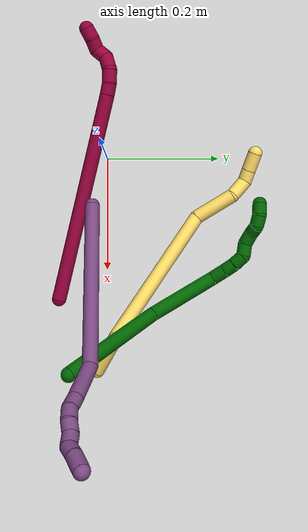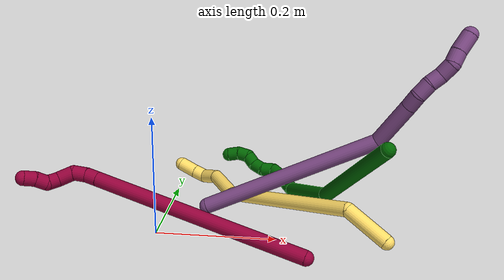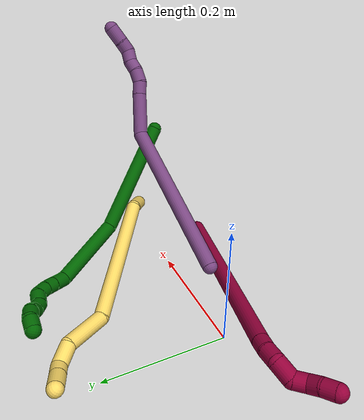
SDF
<sdf version="1.7">
 <world name="default">
  <model name="5">
   <static>0</static>
   <link name="5">
    <collision name="collision-cylinder-e_1_1_4">
     <pose>-0.037051 0.008114 -0.01436 -2.62729 -1.15197 2.37211</pose>
     <geometry><cylinder><radius>0.0125</radius><length>0.081112</length></cylinder></geometry>
     <surface>
      <friction><ode><mu>1.16</mu><mu2>1.16</mu2><slip1>0</slip1><slip2>0</slip2></ode></friction>
      <contact><ode><kp>1e+06</kp><kd>1</kd><max_vel>0</max_vel><min_depth>0.001</min_depth></ode></contact>
     </surface>
    </collision>
    <visual name="visual-cylinder-e_1_1_4">
     <pose>-0.037051 0.008114 -0.01436 -2.62729 -1.15197 2.37211</pose>
     <geometry><cylinder><radius>0.0125</radius><length>0.081112</length></cylinder></geometry>
     <material><ambient>1 0.858824 0.4 1</ambient></material>
    </visual>
    <collision name="collision-cylinder-e_2_4_5">
     <pose>-0.179542 0.083252 -0.006091 -1.24519 -0.97986 0.731219</pose>
     <geometry><cylinder><radius>0.0125</radius><length>0.253944</length></cylinder></geometry>
     <surface>
      <friction><ode><mu>1.16</mu><mu2>1.16</mu2><slip1>0</slip1><slip2>0</slip2></ode></friction>
      <contact><ode><kp>1e+06</kp><kd>1</kd><max_vel>0</max_vel><min_depth>0.001</min_depth></ode></contact>
     </surface>
    </collision>
    <visual name="visual-cylinder-e_2_4_5">
     <pose>-0.179542 0.083252 -0.006091 -1.24519 -0.97986 0.731219</pose>
     <geometry><cylinder><radius>0.0125</radius><length>0.253944</length></cylinder></geometry>
     <material><ambient>1 0.858824 0.4 1</ambient></material>
    </visual>
    <collision name="collision-cylinder-e_3_5_6">
     <pose>-0.321306 0.152115 0.025261 -0.207765 -1.33013 0.163167</pose>
     <geometry><cylinder><radius>0.0125</radius><length>0.074804</length></cylinder></geometry>
     <surface>
      <friction><ode><mu>1.16</mu><mu2>1.16</mu2><slip1>0</slip1><slip2>0</slip2></ode></friction>
      <contact><ode><kp>1e+06</kp><kd>1</kd><max_vel>0</max_vel><min_depth>0.001</min_depth></ode></contact>
     </surface>
    </collision>
    <visual name="visual-cylinder-e_3_5_6">
     <pose>-0.321306 0.152115 0.025261 -0.207765 -1.33013 0.163167</pose>
     <geometry><cylinder><radius>0.0125</radius><length>0.074804</length></cylinder></geometry>
     <material><ambient>1 0.858824 0.4 1</ambient></material>
    </visual>
    <collision name="collision-cylinder-e_4_6_7">
     <pose>-0.372246 0.162408 0.039593 -0.985015 -0.963998 0.547374</pose>
     <geometry><cylinder><radius>0.0125</radius><length>0.035584</length></cylinder></geometry>
     <surface>
      <friction><ode><mu>1.16</mu><mu2>1.16</mu2><slip1>0</slip1><slip2>0</slip2></ode></friction>
      <contact><ode><kp>1e+06</kp><kd>1</kd><max_vel>0</max_vel><min_depth>0.001</min_depth></ode></contact>
     </surface>
    </collision>
    <visual name="visual-cylinder-e_4_6_7">
     <pose>-0.372246 0.162408 0.039593 -0.985015 -0.963998 0.547374</pose>
     <geometry><cylinder><radius>0.0125</radius><length>0.035584</length></cylinder></geometry>
     <material><ambient>1 0.858824 0.4 1</ambient></material>
    </visual>
    <collision name="collision-cylinder-e_5_7_8">
     <pose>-0.396011 0.175736 0.041758 -2.18594 -0.992873 1.61577</pose>
     <geometry><cylinder><radius>0.0125</radius><length>0.021848</length></cylinder></geometry>
     <surface>
      <friction><ode><mu>1.16</mu><mu2>1.16</mu2><slip1>0</slip1><slip2>0</slip2></ode></friction>
      <contact><ode><kp>1e+06</kp><kd>1</kd><max_vel>0</max_vel><min_depth>0.001</min_depth></ode></contact>
     </surface>
    </collision>
    <visual name="visual-cylinder-e_5_7_8">
     <pose>-0.396011 0.175736 0.041758 -2.18594 -0.992873 1.61577</pose>
     <geometry><cylinder><radius>0.0125</radius><length>0.021848</length></cylinder></geometry>
     <material><ambient>1 0.858824 0.4 1</ambient></material>
    </visual>
    <collision name="collision-cylinder-e_6_8_2">
     <pose>-0.419051 0.18716 0.032693 -2.27999 -1.01472 1.75991</pose>
     <geometry><cylinder><radius>0.0125</radius><length>0.032708</length></cylinder></geometry>
     <surface>
      <friction><ode><mu>1.16</mu><mu2>1.16</mu2><slip1>0</slip1><slip2>0</slip2></ode></friction>
      <contact><ode><kp>1e+06</kp><kd>1</kd><max_vel>0</max_vel><min_depth>0.001</min_depth></ode></contact>
     </surface>
    </collision>
    <visual name="visual-cylinder-e_6_8_2">
     <pose>-0.419051 0.18716 0.032693 -2.27999 -1.01472 1.75991</pose>
     <geometry><cylinder><radius>0.0125</radius><length>0.032708</length></cylinder></geometry>
     <material><ambient>1 0.858824 0.4 1</ambient></material>
    </visual>
    <collision name="collision-sphere-2">
     <pose>-0.432941 0.193711 0.027071 0 -0 0</pose>
     <geometry><sphere><radius>0.0125</radius></sphere></geometry>
     <surface>
      <friction><ode><mu>1.16</mu><mu2>1.16</mu2><slip1>0</slip1><slip2>0</slip2></ode></friction>
      <contact><ode><kp>1e+06</kp><kd>1</kd><max_vel>0</max_vel><min_depth>0.001</min_depth></ode></contact>
     </surface>
    </collision>
    <visual name="visual-sphere-2">
     <pose>-0.432941 0.193711 0.027071 0 -0 0</pose>
     <geometry><sphere><radius>0.0125</radius></sphere></geometry>
     <material><ambient>1 0.858824 0.4 1</ambient></material>
    </visual>
    <collision name="collision-sphere-4">
     <pose>-0.074101 0.016227 -0.02872 0 -0 0</pose>
     <geometry><sphere><radius>0.0125</radius></sphere></geometry>
     <surface>
      <friction><ode><mu>1.16</mu><mu2>1.16</mu2><slip1>0</slip1><slip2>0</slip2></ode></friction>
      <contact><ode><kp>1e+06</kp><kd>1</kd><max_vel>0</max_vel><min_depth>0.001</min_depth></ode></contact>
     </surface>
    </collision>
    <visual name="visual-sphere-4">
     <pose>-0.074101 0.016227 -0.02872 0 -0 0</pose>
     <geometry><sphere><radius>0.0125</radius></sphere></geometry>
     <material><ambient>1 0.858824 0.4 1</ambient></material>
    </visual>
    <collision name="collision-sphere-1">
     <geometry><sphere><radius>0.0125</radius></sphere></geometry>
     <surface>
      <friction><ode><mu>1.16</mu><mu2>1.16</mu2><slip1>0</slip1><slip2>0</slip2></ode></friction>
      <contact><ode><kp>1e+06</kp><kd>1</kd><max_vel>0</max_vel><min_depth>0.001</min_depth></ode></contact>
     </surface>
    </collision>
    <visual name="visual-sphere-1">
     <geometry><sphere><radius>0.0125</radius></sphere></geometry>
     <material><ambient>1 0.858824 0.4 1</ambient></material>
    </visual>
    <collision name="collision-sphere-8">
     <pose>-0.405161 0.180609 0.038314 0 -0 0</pose>
     <geometry><sphere><radius>0.0125</radius></sphere></geometry>
     <surface>
      <friction><ode><mu>1.16</mu><mu2>1.16</mu2><slip1>0</slip1><slip2>0</slip2></ode></friction>
      <contact><ode><kp>1e+06</kp><kd>1</kd><max_vel>0</max_vel><min_depth>0.001</min_depth></ode></contact>
     </surface>
    </collision>
    <visual name="visual-sphere-8">
     <pose>-0.405161 0.180609 0.038314 0 -0 0</pose>
     <geometry><sphere><radius>0.0125</radius></sphere></geometry>
     <material><ambient>1 0.858824 0.4 1</ambient></material>
    </visual>
    <collision name="collision-sphere-5">
     <pose>-0.284982 0.150276 0.016538 0 -0 0</pose>
     <geometry><sphere><radius>0.0125</radius></sphere></geometry>
     <surface>
      <friction><ode><mu>1.16</mu><mu2>1.16</mu2><slip1>0</slip1><slip2>0</slip2></ode></friction>
      <contact><ode><kp>1e+06</kp><kd>1</kd><max_vel>0</max_vel><min_depth>0.001</min_depth></ode></contact>
     </surface>
    </collision>
    <visual name="visual-sphere-5">
     <pose>-0.284982 0.150276 0.016538 0 -0 0</pose>
     <geometry><sphere><radius>0.0125</radius></sphere></geometry>
     <material><ambient>1 0.858824 0.4 1</ambient></material>
    </visual>
    <collision name="collision-sphere-6">
     <pose>-0.35763 0.153954 0.033984 0 -0 0</pose>
     <geometry><sphere><radius>0.0125</radius></sphere></geometry>
     <surface>
      <friction><ode><mu>1.16</mu><mu2>1.16</mu2><slip1>0</slip1><slip2>0</slip2></ode></friction>
      <contact><ode><kp>1e+06</kp><kd>1</kd><max_vel>0</max_vel><min_depth>0.001</min_depth></ode></contact>
     </surface>
    </collision>
    <visual name="visual-sphere-6">
     <pose>-0.35763 0.153954 0.033984 0 -0 0</pose>
     <geometry><sphere><radius>0.0125</radius></sphere></geometry>
     <material><ambient>1 0.858824 0.4 1</ambient></material>
    </visual>
    <collision name="collision-sphere-7">
     <pose>-0.386862 0.170862 0.045202 0 -0 0</pose>
     <geometry><sphere><radius>0.0125</radius></sphere></geometry>
     <surface>
      <friction><ode><mu>1.16</mu><mu2>1.16</mu2><slip1>0</slip1><slip2>0</slip2></ode></friction>
      <contact><ode><kp>1e+06</kp><kd>1</kd><max_vel>0</max_vel><min_depth>0.001</min_depth></ode></contact>
     </surface>
    </collision>
    <visual name="visual-sphere-7">
     <pose>-0.386862 0.170862 0.045202 0 -0 0</pose>
     <geometry><sphere><radius>0.0125</radius></sphere></geometry>
     <material><ambient>1 0.858824 0.4 1</ambient></material>
    </visual>
    <inertial>
     <pose>-0.216476 0.097837 0.005137 0 -0 0</pose>
     <mass>0.5</mass>
     <inertia>
      <ixx>0.001064</ixx>
      <ixy>0</ixy>
      <ixz>0</ixz>
      <iyy>0.001687</iyy>
      <iyz>0</iyz>
      <izz>0.000491</izz>
     </inertia>
    </inertial>
   </link>
   <pose>0.377731 -0.016365 0.013686 -2.54491 0.32754 -0.942035</pose>
  </model>
  <model name="6">
   <static>0</static>
   <link name="6">
    <collision name="collision-cylinder-e_1_1_4">
     <pose>0.014207 0.012767 -0.098984 -3.01332 0.141397 -1.66836</pose>
     <geometry><cylinder><radius>0.0125</radius><length>0.201619</length></cylinder></geometry>
     <surface>
      <friction><ode><mu>1.16</mu><mu2>1.16</mu2><slip1>0</slip1><slip2>0</slip2></ode></friction>
      <contact><ode><kp>1e+06</kp><kd>1</kd><max_vel>0</max_vel><min_depth>0.001</min_depth></ode></contact>
     </surface>
    </collision>
    <visual name="visual-cylinder-e_1_1_4">
     <pose>0.014207 0.012767 -0.098984 -3.01332 0.141397 -1.66836</pose>
     <geometry><cylinder><radius>0.0125</radius><length>0.201619</length></cylinder></geometry>
     <material><ambient>0 0.392157 0.003922 1</ambient></material>
    </visual>
    <collision name="collision-cylinder-e_2_4_5">
     <pose>0.039665 0.058309 -0.251472 -2.59198 0.177434 -0.611223</pose>
     <geometry><cylinder><radius>0.0125</radius><length>0.127493</length></cylinder></geometry>
     <surface>
      <friction><ode><mu>1.16</mu><mu2>1.16</mu2><slip1>0</slip1><slip2>0</slip2></ode></friction>
      <contact><ode><kp>1e+06</kp><kd>1</kd><max_vel>0</max_vel><min_depth>0.001</min_depth></ode></contact>
     </surface>
    </collision>
    <visual name="visual-cylinder-e_2_4_5">
     <pose>0.039665 0.058309 -0.251472 -2.59198 0.177434 -0.611223</pose>
     <geometry><cylinder><radius>0.0125</radius><length>0.127493</length></cylinder></geometry>
     <material><ambient>0 0.392157 0.003922 1</ambient></material>
    </visual>
    <collision name="collision-cylinder-e_3_5_6">
     <pose>0.051952 0.102854 -0.31136 -2.06773 0.077223 -0.129612</pose>
     <geometry><cylinder><radius>0.0125</radius><length>0.026857</length></cylinder></geometry>
     <surface>
      <friction><ode><mu>1.16</mu><mu2>1.16</mu2><slip1>0</slip1><slip2>0</slip2></ode></friction>
      <contact><ode><kp>1e+06</kp><kd>1</kd><max_vel>0</max_vel><min_depth>0.001</min_depth></ode></contact>
     </surface>
    </collision>
    <visual name="visual-cylinder-e_3_5_6">
     <pose>0.051952 0.102854 -0.31136 -2.06773 0.077223 -0.129612</pose>
     <geometry><cylinder><radius>0.0125</radius><length>0.026857</length></cylinder></geometry>
     <material><ambient>0 0.392157 0.003922 1</ambient></material>
    </visual>
    <collision name="collision-cylinder-e_4_6_7">
     <pose>0.053493 0.123465 -0.322396 -2.0552 0.050432 -0.083495</pose>
     <geometry><cylinder><radius>0.0125</radius><length>0.02001</length></cylinder></geometry>
     <surface>
      <friction><ode><mu>1.16</mu><mu2>1.16</mu2><slip1>0</slip1><slip2>0</slip2></ode></friction>
      <contact><ode><kp>1e+06</kp><kd>1</kd><max_vel>0</max_vel><min_depth>0.001</min_depth></ode></contact>
     </surface>
    </collision>
    <visual name="visual-cylinder-e_4_6_7">
     <pose>0.053493 0.123465 -0.322396 -2.0552 0.050432 -0.083495</pose>
     <geometry><cylinder><radius>0.0125</radius><length>0.02001</length></cylinder></geometry>
     <material><ambient>0 0.392157 0.003922 1</ambient></material>
    </visual>
    <collision name="collision-cylinder-e_5_7_8">
     <pose>0.053013 0.14149 -0.332609 -2.11525 -0.091402 0.161953</pose>
     <geometry><cylinder><radius>0.0125</radius><length>0.021558</length></cylinder></geometry>
     <surface>
      <friction><ode><mu>1.16</mu><mu2>1.16</mu2><slip1>0</slip1><slip2>0</slip2></ode></friction>
      <contact><ode><kp>1e+06</kp><kd>1</kd><max_vel>0</max_vel><min_depth>0.001</min_depth></ode></contact>
     </surface>
    </collision>
    <visual name="visual-cylinder-e_5_7_8">
     <pose>0.053013 0.14149 -0.332609 -2.11525 -0.091402 0.161953</pose>
     <geometry><cylinder><radius>0.0125</radius><length>0.021558</length></cylinder></geometry>
     <material><ambient>0 0.392157 0.003922 1</ambient></material>
    </visual>
    <collision name="collision-cylinder-e_6_8_9">
     <pose>0.044733 0.15571 -0.344624 -2.479 -0.727847 1.67256</pose>
     <geometry><cylinder><radius>0.0125</radius><length>0.021935</length></cylinder></geometry>
     <surface>
      <friction><ode><mu>1.16</mu><mu2>1.16</mu2><slip1>0</slip1><slip2>0</slip2></ode></friction>
      <contact><ode><kp>1e+06</kp><kd>1</kd><max_vel>0</max_vel><min_depth>0.001</min_depth></ode></contact>
     </surface>
    </collision>
    <visual name="visual-cylinder-e_6_8_9">
     <pose>0.044733 0.15571 -0.344624 -2.479 -0.727847 1.67256</pose>
     <geometry><cylinder><radius>0.0125</radius><length>0.021935</length></cylinder></geometry>
     <material><ambient>0 0.392157 0.003922 1</ambient></material>
    </visual>
    <collision name="collision-cylinder-e_7_9_10">
     <pose>0.033499 0.169047 -0.355544 -2.06424 -0.395786 0.647434</pose>
     <geometry><cylinder><radius>0.0125</radius><length>0.020428</length></cylinder></geometry>
     <surface>
      <friction><ode><mu>1.16</mu><mu2>1.16</mu2><slip1>0</slip1><slip2>0</slip2></ode></friction>
      <contact><ode><kp>1e+06</kp><kd>1</kd><max_vel>0</max_vel><min_depth>0.001</min_depth></ode></contact>
     </surface>
    </collision>
    <visual name="visual-cylinder-e_7_9_10">
     <pose>0.033499 0.169047 -0.355544 -2.06424 -0.395786 0.647434</pose>
     <geometry><cylinder><radius>0.0125</radius><length>0.020428</length></cylinder></geometry>
     <material><ambient>0 0.392157 0.003922 1</ambient></material>
    </visual>
    <collision name="collision-cylinder-e_8_10_11">
     <pose>0.026524 0.18691 -0.360472 -1.61922 -0.307225 0.322216</pose>
     <geometry><cylinder><radius>0.0125</radius><length>0.020088</length></cylinder></geometry>
     <surface>
      <friction><ode><mu>1.16</mu><mu2>1.16</mu2><slip1>0</slip1><slip2>0</slip2></ode></friction>
      <contact><ode><kp>1e+06</kp><kd>1</kd><max_vel>0</max_vel><min_depth>0.001</min_depth></ode></contact>
     </surface>
    </collision>
    <visual name="visual-cylinder-e_8_10_11">
     <pose>0.026524 0.18691 -0.360472 -1.61922 -0.307225 0.322216</pose>
     <geometry><cylinder><radius>0.0125</radius><length>0.020088</length></cylinder></geometry>
     <material><ambient>0 0.392157 0.003922 1</ambient></material>
    </visual>
    <collision name="collision-cylinder-e_9_11_12">
     <pose>0.017409 0.20284 -0.365687 -2.21188 -0.65294 1.18768</pose>
     <geometry><cylinder><radius>0.0125</radius><length>0.020006</length></cylinder></geometry>
     <surface>
      <friction><ode><mu>1.16</mu><mu2>1.16</mu2><slip1>0</slip1><slip2>0</slip2></ode></friction>
      <contact><ode><kp>1e+06</kp><kd>1</kd><max_vel>0</max_vel><min_depth>0.001</min_depth></ode></contact>
     </surface>
    </collision>
    <visual name="visual-cylinder-e_9_11_12">
     <pose>0.017409 0.20284 -0.365687 -2.21188 -0.65294 1.18768</pose>
     <geometry><cylinder><radius>0.0125</radius><length>0.020006</length></cylinder></geometry>
     <material><ambient>0 0.392157 0.003922 1</ambient></material>
    </visual>
    <collision name="collision-cylinder-e_10_12_2">
     <pose>0.004325 0.211954 -0.377028 -2.74673 -0.77605 2.23134</pose>
     <geometry><cylinder><radius>0.0125</radius><length>0.020005</length></cylinder></geometry>
     <surface>
      <friction><ode><mu>1.16</mu><mu2>1.16</mu2><slip1>0</slip1><slip2>0</slip2></ode></friction>
      <contact><ode><kp>1e+06</kp><kd>1</kd><max_vel>0</max_vel><min_depth>0.001</min_depth></ode></contact>
     </surface>
    </collision>
    <visual name="visual-cylinder-e_10_12_2">
     <pose>0.004325 0.211954 -0.377028 -2.74673 -0.77605 2.23134</pose>
     <geometry><cylinder><radius>0.0125</radius><length>0.020005</length></cylinder></geometry>
     <material><ambient>0 0.392157 0.003922 1</ambient></material>
    </visual>
    <collision name="collision-sphere-2">
     <pose>-0.002681 0.2147 -0.383618 0 -0 0</pose>
     <geometry><sphere><radius>0.0125</radius></sphere></geometry>
     <surface>
      <friction><ode><mu>1.16</mu><mu2>1.16</mu2><slip1>0</slip1><slip2>0</slip2></ode></friction>
      <contact><ode><kp>1e+06</kp><kd>1</kd><max_vel>0</max_vel><min_depth>0.001</min_depth></ode></contact>
     </surface>
    </collision>
    <visual name="visual-sphere-2">
     <pose>-0.002681 0.2147 -0.383618 0 -0 0</pose>
     <geometry><sphere><radius>0.0125</radius></sphere></geometry>
     <material><ambient>0 0.392157 0.003922 1</ambient></material>
    </visual>
    <collision name="collision-sphere-12">
     <pose>0.011332 0.209208 -0.370439 0 -0 0</pose>
     <geometry><sphere><radius>0.0125</radius></sphere></geometry>
     <surface>
      <friction><ode><mu>1.16</mu><mu2>1.16</mu2><slip1>0</slip1><slip2>0</slip2></ode></friction>
      <contact><ode><kp>1e+06</kp><kd>1</kd><max_vel>0</max_vel><min_depth>0.001</min_depth></ode></contact>
     </surface>
    </collision>
    <visual name="visual-sphere-12">
     <pose>0.011332 0.209208 -0.370439 0 -0 0</pose>
     <geometry><sphere><radius>0.0125</radius></sphere></geometry>
     <material><ambient>0 0.392157 0.003922 1</ambient></material>
    </visual>
    <collision name="collision-sphere-11">
     <pose>0.023486 0.196472 -0.360935 0 -0 0</pose>
     <geometry><sphere><radius>0.0125</radius></sphere></geometry>
     <surface>
      <friction><ode><mu>1.16</mu><mu2>1.16</mu2><slip1>0</slip1><slip2>0</slip2></ode></friction>
      <contact><ode><kp>1e+06</kp><kd>1</kd><max_vel>0</max_vel><min_depth>0.001</min_depth></ode></contact>
     </surface>
    </collision>
    <visual name="visual-sphere-11">
     <pose>0.023486 0.196472 -0.360935 0 -0 0</pose>
     <geometry><sphere><radius>0.0125</radius></sphere></geometry>
     <material><ambient>0 0.392157 0.003922 1</ambient></material>
    </visual>
    <collision name="collision-sphere-10">
     <pose>0.029561 0.177347 -0.360008 0 -0 0</pose>
     <geometry><sphere><radius>0.0125</radius></sphere></geometry>
     <surface>
      <friction><ode><mu>1.16</mu><mu2>1.16</mu2><slip1>0</slip1><slip2>0</slip2></ode></friction>
      <contact><ode><kp>1e+06</kp><kd>1</kd><max_vel>0</max_vel><min_depth>0.001</min_depth></ode></contact>
     </surface>
    </collision>
    <visual name="visual-sphere-10">
     <pose>0.029561 0.177347 -0.360008 0 -0 0</pose>
     <geometry><sphere><radius>0.0125</radius></sphere></geometry>
     <material><ambient>0 0.392157 0.003922 1</ambient></material>
    </visual>
    <collision name="collision-sphere-9">
     <pose>0.037437 0.160747 -0.35108 0 -0 0</pose>
     <geometry><sphere><radius>0.0125</radius></sphere></geometry>
     <surface>
      <friction><ode><mu>1.16</mu><mu2>1.16</mu2><slip1>0</slip1><slip2>0</slip2></ode></friction>
      <contact><ode><kp>1e+06</kp><kd>1</kd><max_vel>0</max_vel><min_depth>0.001</min_depth></ode></contact>
     </surface>
    </collision>
    <visual name="visual-sphere-9">
     <pose>0.037437 0.160747 -0.35108 0 -0 0</pose>
     <geometry><sphere><radius>0.0125</radius></sphere></geometry>
     <material><ambient>0 0.392157 0.003922 1</ambient></material>
    </visual>
    <collision name="collision-sphere-4">
     <pose>0.028413 0.025534 -0.197967 0 -0 0</pose>
     <geometry><sphere><radius>0.0125</radius></sphere></geometry>
     <surface>
      <friction><ode><mu>1.16</mu><mu2>1.16</mu2><slip1>0</slip1><slip2>0</slip2></ode></friction>
      <contact><ode><kp>1e+06</kp><kd>1</kd><max_vel>0</max_vel><min_depth>0.001</min_depth></ode></contact>
     </surface>
    </collision>
    <visual name="visual-sphere-4">
     <pose>0.028413 0.025534 -0.197967 0 -0 0</pose>
     <geometry><sphere><radius>0.0125</radius></sphere></geometry>
     <material><ambient>0 0.392157 0.003922 1</ambient></material>
    </visual>
    <collision name="collision-sphere-1">
     <geometry><sphere><radius>0.0125</radius></sphere></geometry>
     <surface>
      <friction><ode><mu>1.16</mu><mu2>1.16</mu2><slip1>0</slip1><slip2>0</slip2></ode></friction>
      <contact><ode><kp>1e+06</kp><kd>1</kd><max_vel>0</max_vel><min_depth>0.001</min_depth></ode></contact>
     </surface>
    </collision>
    <visual name="visual-sphere-1">
     <geometry><sphere><radius>0.0125</radius></sphere></geometry>
     <material><ambient>0 0.392157 0.003922 1</ambient></material>
    </visual>
    <collision name="collision-sphere-8">
     <pose>0.052029 0.150672 -0.338169 0 -0 0</pose>
     <geometry><sphere><radius>0.0125</radius></sphere></geometry>
     <surface>
      <friction><ode><mu>1.16</mu><mu2>1.16</mu2><slip1>0</slip1><slip2>0</slip2></ode></friction>
      <contact><ode><kp>1e+06</kp><kd>1</kd><max_vel>0</max_vel><min_depth>0.001</min_depth></ode></contact>
     </surface>
    </collision>
    <visual name="visual-sphere-8">
     <pose>0.052029 0.150672 -0.338169 0 -0 0</pose>
     <geometry><sphere><radius>0.0125</radius></sphere></geometry>
     <material><ambient>0 0.392157 0.003922 1</ambient></material>
    </visual>
    <collision name="collision-sphere-5">
     <pose>0.050917 0.091085 -0.304977 0 -0 0</pose>
     <geometry><sphere><radius>0.0125</radius></sphere></geometry>
     <surface>
      <friction><ode><mu>1.16</mu><mu2>1.16</mu2><slip1>0</slip1><slip2>0</slip2></ode></friction>
      <contact><ode><kp>1e+06</kp><kd>1</kd><max_vel>0</max_vel><min_depth>0.001</min_depth></ode></contact>
     </surface>
    </collision>
    <visual name="visual-sphere-5">
     <pose>0.050917 0.091085 -0.304977 0 -0 0</pose>
     <geometry><sphere><radius>0.0125</radius></sphere></geometry>
     <material><ambient>0 0.392157 0.003922 1</ambient></material>
    </visual>
    <collision name="collision-sphere-6">
     <pose>0.052988 0.114623 -0.317743 0 -0 0</pose>
     <geometry><sphere><radius>0.0125</radius></sphere></geometry>
     <surface>
      <friction><ode><mu>1.16</mu><mu2>1.16</mu2><slip1>0</slip1><slip2>0</slip2></ode></friction>
      <contact><ode><kp>1e+06</kp><kd>1</kd><max_vel>0</max_vel><min_depth>0.001</min_depth></ode></contact>
     </surface>
    </collision>
    <visual name="visual-sphere-6">
     <pose>0.052988 0.114623 -0.317743 0 -0 0</pose>
     <geometry><sphere><radius>0.0125</radius></sphere></geometry>
     <material><ambient>0 0.392157 0.003922 1</ambient></material>
    </visual>
    <collision name="collision-sphere-7">
     <pose>0.053997 0.132308 -0.327049 0 -0 0</pose>
     <geometry><sphere><radius>0.0125</radius></sphere></geometry>
     <surface>
      <friction><ode><mu>1.16</mu><mu2>1.16</mu2><slip1>0</slip1><slip2>0</slip2></ode></friction>
      <contact><ode><kp>1e+06</kp><kd>1</kd><max_vel>0</max_vel><min_depth>0.001</min_depth></ode></contact>
     </surface>
    </collision>
    <visual name="visual-sphere-7">
     <pose>0.053997 0.132308 -0.327049 0 -0 0</pose>
     <geometry><sphere><radius>0.0125</radius></sphere></geometry>
     <material><ambient>0 0.392157 0.003922 1</ambient></material>
    </visual>
    <inertial>
     <pose>0.028326 0.074426 -0.221848 0 -0 0</pose>
     <mass>0.5</mass>
     <inertia>
      <ixx>-0.000693</ixx>
      <ixy>0</ixy>
      <ixz>0</ixz>
      <iyy>-0.000796</iyy>
      <iyz>0</iyz>
      <izz>-0.000343</izz>
     </inertia>
    </inertial>
   </link>
   <pose>0.366614 -0.048152 0.177878 0.765214 0.129088 0.677006</pose>
  </model>
  <model name="8">
   <static>0</static>
   <link name="8">
    <collision name="collision-cylinder-e_1_1_4">
     <pose>-0.138444 0.062929 0.103771 -0.545127 -0.851059 0.252026</pose>
     <geometry><cylinder><radius>0.0125</radius><length>0.368212</length></cylinder></geometry>
     <surface>
      <friction><ode><mu>1.16</mu><mu2>1.16</mu2><slip1>0</slip1><slip2>0</slip2></ode></friction>
      <contact><ode><kp>1e+06</kp><kd>1</kd><max_vel>0</max_vel><min_depth>0.001</min_depth></ode></contact>
     </surface>
    </collision>
    <visual name="visual-cylinder-e_1_1_4">
     <pose>-0.138444 0.062929 0.103771 -0.545127 -0.851059 0.252026</pose>
     <geometry><cylinder><radius>0.0125</radius><length>0.368212</length></cylinder></geometry>
     <material><ambient>0.584314 0 0.227451 1</ambient></material>
    </visual>
    <collision name="collision-cylinder-e_2_4_5">
     <pose>-0.284914 0.129147 0.212984 -0.54359 -0.900725 0.267882</pose>
     <geometry><cylinder><radius>0.0125</radius><length>0.020481</length></cylinder></geometry>
     <surface>
      <friction><ode><mu>1.16</mu><mu2>1.16</mu2><slip1>0</slip1><slip2>0</slip2></ode></friction>
      <contact><ode><kp>1e+06</kp><kd>1</kd><max_vel>0</max_vel><min_depth>0.001</min_depth></ode></contact>
     </surface>
    </collision>
    <visual name="visual-cylinder-e_2_4_5">
     <pose>-0.284914 0.129147 0.212984 -0.54359 -0.900725 0.267882</pose>
     <geometry><cylinder><radius>0.0125</radius><length>0.020481</length></cylinder></geometry>
     <material><ambient>0.584314 0 0.227451 1</ambient></material>
    </visual>
    <collision name="collision-cylinder-e_3_5_6">
     <pose>-0.302265 0.137196 0.222355 -0.880964 -0.986159 0.496147</pose>
     <geometry><cylinder><radius>0.0125</radius><length>0.022365</length></cylinder></geometry>
     <surface>
      <friction><ode><mu>1.16</mu><mu2>1.16</mu2><slip1>0</slip1><slip2>0</slip2></ode></friction>
      <contact><ode><kp>1e+06</kp><kd>1</kd><max_vel>0</max_vel><min_depth>0.001</min_depth></ode></contact>
     </surface>
    </collision>
    <visual name="visual-cylinder-e_3_5_6">
     <pose>-0.302265 0.137196 0.222355 -0.880964 -0.986159 0.496147</pose>
     <geometry><cylinder><radius>0.0125</radius><length>0.022365</length></cylinder></geometry>
     <material><ambient>0.584314 0 0.227451 1</ambient></material>
    </visual>
    <collision name="collision-cylinder-e_4_6_7">
     <pose>-0.320651 0.152666 0.225386 -1.65433 -0.700448 0.756084</pose>
     <geometry><cylinder><radius>0.0125</radius><length>0.028113</length></cylinder></geometry>
     <surface>
      <friction><ode><mu>1.16</mu><mu2>1.16</mu2><slip1>0</slip1><slip2>0</slip2></ode></friction>
      <contact><ode><kp>1e+06</kp><kd>1</kd><max_vel>0</max_vel><min_depth>0.001</min_depth></ode></contact>
     </surface>
    </collision>
    <visual name="visual-cylinder-e_4_6_7">
     <pose>-0.320651 0.152666 0.225386 -1.65433 -0.700448 0.756084</pose>
     <geometry><cylinder><radius>0.0125</radius><length>0.028113</length></cylinder></geometry>
     <material><ambient>0.584314 0 0.227451 1</ambient></material>
    </visual>
    <collision name="collision-cylinder-e_5_7_8">
     <pose>-0.337931 0.166551 0.219027 -2.61502 -0.915467 2.14028</pose>
     <geometry><cylinder><radius>0.0125</radius><length>0.020737</length></cylinder></geometry>
     <surface>
      <friction><ode><mu>1.16</mu><mu2>1.16</mu2><slip1>0</slip1><slip2>0</slip2></ode></friction>
      <contact><ode><kp>1e+06</kp><kd>1</kd><max_vel>0</max_vel><min_depth>0.001</min_depth></ode></contact>
     </surface>
    </collision>
    <visual name="visual-cylinder-e_5_7_8">
     <pose>-0.337931 0.166551 0.219027 -2.61502 -0.915467 2.14028</pose>
     <geometry><cylinder><radius>0.0125</radius><length>0.020737</length></cylinder></geometry>
     <material><ambient>0.584314 0 0.227451 1</ambient></material>
    </visual>
    <collision name="collision-cylinder-e_6_8_9">
     <pose>-0.356156 0.170031 0.214115 -0.503835 -1.50795 0.4743</pose>
     <geometry><cylinder><radius>0.0125</radius><length>0.020049</length></cylinder></geometry>
     <surface>
      <friction><ode><mu>1.16</mu><mu2>1.16</mu2><slip1>0</slip1><slip2>0</slip2></ode></friction>
      <contact><ode><kp>1e+06</kp><kd>1</kd><max_vel>0</max_vel><min_depth>0.001</min_depth></ode></contact>
     </surface>
    </collision>
    <visual name="visual-cylinder-e_6_8_9">
     <pose>-0.356156 0.170031 0.214115 -0.503835 -1.50795 0.4743</pose>
     <geometry><cylinder><radius>0.0125</radius><length>0.020049</length></cylinder></geometry>
     <material><ambient>0.584314 0 0.227451 1</ambient></material>
    </visual>
    <collision name="collision-cylinder-e_7_9_2">
     <pose>-0.375852 0.172598 0.213481 -2.05317 -1.313 1.81003</pose>
     <geometry><cylinder><radius>0.0125</radius><length>0.020044</length></cylinder></geometry>
     <surface>
      <friction><ode><mu>1.16</mu><mu2>1.16</mu2><slip1>0</slip1><slip2>0</slip2></ode></friction>
      <contact><ode><kp>1e+06</kp><kd>1</kd><max_vel>0</max_vel><min_depth>0.001</min_depth></ode></contact>
     </surface>
    </collision>
    <visual name="visual-cylinder-e_7_9_2">
     <pose>-0.375852 0.172598 0.213481 -2.05317 -1.313 1.81003</pose>
     <geometry><cylinder><radius>0.0125</radius><length>0.020044</length></cylinder></geometry>
     <material><ambient>0.584314 0 0.227451 1</ambient></material>
    </visual>
    <collision name="collision-sphere-2">
     <pose>-0.385543 0.174862 0.212296 0 -0 0</pose>
     <geometry><sphere><radius>0.0125</radius></sphere></geometry>
     <surface>
      <friction><ode><mu>1.16</mu><mu2>1.16</mu2><slip1>0</slip1><slip2>0</slip2></ode></friction>
      <contact><ode><kp>1e+06</kp><kd>1</kd><max_vel>0</max_vel><min_depth>0.001</min_depth></ode></contact>
     </surface>
    </collision>
    <visual name="visual-sphere-2">
     <pose>-0.385543 0.174862 0.212296 0 -0 0</pose>
     <geometry><sphere><radius>0.0125</radius></sphere></geometry>
     <material><ambient>0.584314 0 0.227451 1</ambient></material>
    </visual>
    <collision name="collision-sphere-9">
     <pose>-0.366161 0.170335 0.214667 0 -0 0</pose>
     <geometry><sphere><radius>0.0125</radius></sphere></geometry>
     <surface>
      <friction><ode><mu>1.16</mu><mu2>1.16</mu2><slip1>0</slip1><slip2>0</slip2></ode></friction>
      <contact><ode><kp>1e+06</kp><kd>1</kd><max_vel>0</max_vel><min_depth>0.001</min_depth></ode></contact>
     </surface>
    </collision>
    <visual name="visual-sphere-9">
     <pose>-0.366161 0.170335 0.214667 0 -0 0</pose>
     <geometry><sphere><radius>0.0125</radius></sphere></geometry>
     <material><ambient>0.584314 0 0.227451 1</ambient></material>
    </visual>
    <collision name="collision-sphere-4">
     <pose>-0.276888 0.125857 0.207541 0 -0 0</pose>
     <geometry><sphere><radius>0.0125</radius></sphere></geometry>
     <surface>
      <friction><ode><mu>1.16</mu><mu2>1.16</mu2><slip1>0</slip1><slip2>0</slip2></ode></friction>
      <contact><ode><kp>1e+06</kp><kd>1</kd><max_vel>0</max_vel><min_depth>0.001</min_depth></ode></contact>
     </surface>
    </collision>
    <visual name="visual-sphere-4">
     <pose>-0.276888 0.125857 0.207541 0 -0 0</pose>
     <geometry><sphere><radius>0.0125</radius></sphere></geometry>
     <material><ambient>0.584314 0 0.227451 1</ambient></material>
    </visual>
    <collision name="collision-sphere-1">
     <geometry><sphere><radius>0.0125</radius></sphere></geometry>
     <surface>
      <friction><ode><mu>1.16</mu><mu2>1.16</mu2><slip1>0</slip1><slip2>0</slip2></ode></friction>
      <contact><ode><kp>1e+06</kp><kd>1</kd><max_vel>0</max_vel><min_depth>0.001</min_depth></ode></contact>
     </surface>
    </collision>
    <visual name="visual-sphere-1">
     <geometry><sphere><radius>0.0125</radius></sphere></geometry>
     <material><ambient>0.584314 0 0.227451 1</ambient></material>
    </visual>
    <collision name="collision-sphere-8">
     <pose>-0.346152 0.169727 0.213564 0 -0 0</pose>
     <geometry><sphere><radius>0.0125</radius></sphere></geometry>
     <surface>
      <friction><ode><mu>1.16</mu><mu2>1.16</mu2><slip1>0</slip1><slip2>0</slip2></ode></friction>
      <contact><ode><kp>1e+06</kp><kd>1</kd><max_vel>0</max_vel><min_depth>0.001</min_depth></ode></contact>
     </surface>
    </collision>
    <visual name="visual-sphere-8">
     <pose>-0.346152 0.169727 0.213564 0 -0 0</pose>
     <geometry><sphere><radius>0.0125</radius></sphere></geometry>
     <material><ambient>0.584314 0 0.227451 1</ambient></material>
    </visual>
    <collision name="collision-sphere-5">
     <pose>-0.29294 0.132436 0.218427 0 -0 0</pose>
     <geometry><sphere><radius>0.0125</radius></sphere></geometry>
     <surface>
      <friction><ode><mu>1.16</mu><mu2>1.16</mu2><slip1>0</slip1><slip2>0</slip2></ode></friction>
      <contact><ode><kp>1e+06</kp><kd>1</kd><max_vel>0</max_vel><min_depth>0.001</min_depth></ode></contact>
     </surface>
    </collision>
    <visual name="visual-sphere-5">
     <pose>-0.29294 0.132436 0.218427 0 -0 0</pose>
     <geometry><sphere><radius>0.0125</radius></sphere></geometry>
     <material><ambient>0.584314 0 0.227451 1</ambient></material>
    </visual>
    <collision name="collision-sphere-6">
     <pose>-0.311591 0.141957 0.226283 0 -0 0</pose>
     <geometry><sphere><radius>0.0125</radius></sphere></geometry>
     <surface>
      <friction><ode><mu>1.16</mu><mu2>1.16</mu2><slip1>0</slip1><slip2>0</slip2></ode></friction>
      <contact><ode><kp>1e+06</kp><kd>1</kd><max_vel>0</max_vel><min_depth>0.001</min_depth></ode></contact>
     </surface>
    </collision>
    <visual name="visual-sphere-6">
     <pose>-0.311591 0.141957 0.226283 0 -0 0</pose>
     <geometry><sphere><radius>0.0125</radius></sphere></geometry>
     <material><ambient>0.584314 0 0.227451 1</ambient></material>
    </visual>
    <collision name="collision-sphere-7">
     <pose>-0.329711 0.163376 0.224489 0 -0 0</pose>
     <geometry><sphere><radius>0.0125</radius></sphere></geometry>
     <surface>
      <friction><ode><mu>1.16</mu><mu2>1.16</mu2><slip1>0</slip1><slip2>0</slip2></ode></friction>
      <contact><ode><kp>1e+06</kp><kd>1</kd><max_vel>0</max_vel><min_depth>0.001</min_depth></ode></contact>
     </surface>
    </collision>
    <visual name="visual-sphere-7">
     <pose>-0.329711 0.163376 0.224489 0 -0 0</pose>
     <geometry><sphere><radius>0.0125</radius></sphere></geometry>
     <material><ambient>0.584314 0 0.227451 1</ambient></material>
    </visual>
    <inertial>
     <pose>-0.188536 0.086997 0.133989 0 -0 0</pose>
     <mass>0.5</mass>
     <inertia>
      <ixx>0.003327</ixx>
      <ixy>0</ixy>
      <ixz>0</ixz>
      <iyy>0.004574</iyy>
      <iyz>0</iyz>
      <izz>0.001733</izz>
     </inertia>
    </inertial>
   </link>
   <pose>0.252622 -0.084831 0.012269 -1.2511 0.473224 0.467085</pose>
  </model>
  <model name="20">
   <static>0</static>
   <link name="20">
    <collision name="collision-cylinder-e_1_1_4">
     <pose>0.030322 0.003558 0.1401 -0.02539 0.21308 -0.002715</pose>
     <geometry><cylinder><radius>0.0125</radius><length>0.286776</length></cylinder></geometry>
     <surface>
      <friction><ode><mu>1.16</mu><mu2>1.16</mu2><slip1>0</slip1><slip2>0</slip2></ode></friction>
      <contact><ode><kp>1e+06</kp><kd>1</kd><max_vel>0</max_vel><min_depth>0.001</min_depth></ode></contact>
     </surface>
    </collision>
    <visual name="visual-cylinder-e_1_1_4">
     <pose>0.030322 0.003558 0.1401 -0.02539 0.21308 -0.002715</pose>
     <geometry><cylinder><radius>0.0125</radius><length>0.286776</length></cylinder></geometry>
     <material><ambient>0.478431 0.278431 0.509804 1</ambient></material>
    </visual>
    <collision name="collision-cylinder-e_2_4_5">
     <pose>0.049585 -0.003624 0.314104 0.306768 -0.301508 -0.04696</pose>
     <geometry><cylinder><radius>0.0125</radius><length>0.074489</length></cylinder></geometry>
     <surface>
      <friction><ode><mu>1.16</mu><mu2>1.16</mu2><slip1>0</slip1><slip2>0</slip2></ode></friction>
      <contact><ode><kp>1e+06</kp><kd>1</kd><max_vel>0</max_vel><min_depth>0.001</min_depth></ode></contact>
     </surface>
    </collision>
    <visual name="visual-cylinder-e_2_4_5">
     <pose>0.049585 -0.003624 0.314104 0.306768 -0.301508 -0.04696</pose>
     <geometry><cylinder><radius>0.0125</radius><length>0.074489</length></cylinder></geometry>
     <material><ambient>0.478431 0.278431 0.509804 1</ambient></material>
    </visual>
    <collision name="collision-cylinder-e_3_5_6">
     <pose>0.034696 -0.018191 0.358249 0.357663 -0.33687 -0.061457</pose>
     <geometry><cylinder><radius>0.0125</radius><length>0.023167</length></cylinder></geometry>
     <surface>
      <friction><ode><mu>1.16</mu><mu2>1.16</mu2><slip1>0</slip1><slip2>0</slip2></ode></friction>
      <contact><ode><kp>1e+06</kp><kd>1</kd><max_vel>0</max_vel><min_depth>0.001</min_depth></ode></contact>
     </surface>
    </collision>
    <visual name="visual-cylinder-e_3_5_6">
     <pose>0.034696 -0.018191 0.358249 0.357663 -0.33687 -0.061457</pose>
     <geometry><cylinder><radius>0.0125</radius><length>0.023167</length></cylinder></geometry>
     <material><ambient>0.478431 0.278431 0.509804 1</ambient></material>
    </visual>
    <collision name="collision-cylinder-e_4_6_7">
     <pose>0.028239 -0.022198 0.379652 0.016087 -0.231177 -0.001868</pose>
     <geometry><cylinder><radius>0.0125</radius><length>0.022938</length></cylinder></geometry>
     <surface>
      <friction><ode><mu>1.16</mu><mu2>1.16</mu2><slip1>0</slip1><slip2>0</slip2></ode></friction>
      <contact><ode><kp>1e+06</kp><kd>1</kd><max_vel>0</max_vel><min_depth>0.001</min_depth></ode></contact>
     </surface>
    </collision>
    <visual name="visual-cylinder-e_4_6_7">
     <pose>0.028239 -0.022198 0.379652 0.016087 -0.231177 -0.001868</pose>
     <geometry><cylinder><radius>0.0125</radius><length>0.022938</length></cylinder></geometry>
     <material><ambient>0.478431 0.278431 0.509804 1</ambient></material>
    </visual>
    <collision name="collision-cylinder-e_5_7_8">
     <pose>0.025294 -0.020746 0.400702 -0.163536 -0.031671 0.002596</pose>
     <geometry><cylinder><radius>0.0125</radius><length>0.020053</length></cylinder></geometry>
     <surface>
      <friction><ode><mu>1.16</mu><mu2>1.16</mu2><slip1>0</slip1><slip2>0</slip2></ode></friction>
      <contact><ode><kp>1e+06</kp><kd>1</kd><max_vel>0</max_vel><min_depth>0.001</min_depth></ode></contact>
     </surface>
    </collision>
    <visual name="visual-cylinder-e_5_7_8">
     <pose>0.025294 -0.020746 0.400702 -0.163536 -0.031671 0.002596</pose>
     <geometry><cylinder><radius>0.0125</radius><length>0.020053</length></cylinder></geometry>
     <material><ambient>0.478431 0.278431 0.509804 1</ambient></material>
    </visual>
    <collision name="collision-cylinder-e_6_8_9">
     <pose>0.022628 -0.020286 0.421153 0.11044 -0.217437 -0.012066</pose>
     <geometry><cylinder><radius>0.0125</radius><length>0.021769</length></cylinder></geometry>
     <surface>
      <friction><ode><mu>1.16</mu><mu2>1.16</mu2><slip1>0</slip1><slip2>0</slip2></ode></friction>
      <contact><ode><kp>1e+06</kp><kd>1</kd><max_vel>0</max_vel><min_depth>0.001</min_depth></ode></contact>
     </surface>
    </collision>
    <visual name="visual-cylinder-e_6_8_9">
     <pose>0.022628 -0.020286 0.421153 0.11044 -0.217437 -0.012066</pose>
     <geometry><cylinder><radius>0.0125</radius><length>0.021769</length></cylinder></geometry>
     <material><ambient>0.478431 0.278431 0.509804 1</ambient></material>
    </visual>
    <collision name="collision-cylinder-e_7_9_10">
     <pose>0.015466 -0.017706 0.440001 -0.425203 -0.48685 0.107117</pose>
     <geometry><cylinder><radius>0.0125</radius><length>0.02058</length></cylinder></geometry>
     <surface>
      <friction><ode><mu>1.16</mu><mu2>1.16</mu2><slip1>0</slip1><slip2>0</slip2></ode></friction>
      <contact><ode><kp>1e+06</kp><kd>1</kd><max_vel>0</max_vel><min_depth>0.001</min_depth></ode></contact>
     </surface>
    </collision>
    <visual name="visual-cylinder-e_7_9_10">
     <pose>0.015466 -0.017706 0.440001 -0.425203 -0.48685 0.107117</pose>
     <geometry><cylinder><radius>0.0125</radius><length>0.02058</length></cylinder></geometry>
     <material><ambient>0.478431 0.278431 0.509804 1</ambient></material>
    </visual>
    <collision name="collision-cylinder-e_8_10_2">
     <pose>0.005471 -0.008763 0.461501 -0.374296 -0.349923 0.066922</pose>
     <geometry><cylinder><radius>0.0125</radius><length>0.030228</length></cylinder></geometry>
     <surface>
      <friction><ode><mu>1.16</mu><mu2>1.16</mu2><slip1>0</slip1><slip2>0</slip2></ode></friction>
      <contact><ode><kp>1e+06</kp><kd>1</kd><max_vel>0</max_vel><min_depth>0.001</min_depth></ode></contact>
     </surface>
    </collision>
    <visual name="visual-cylinder-e_8_10_2">
     <pose>0.005471 -0.008763 0.461501 -0.374296 -0.349923 0.066922</pose>
     <geometry><cylinder><radius>0.0125</radius><length>0.030228</length></cylinder></geometry>
     <material><ambient>0.478431 0.278431 0.509804 1</ambient></material>
    </visual>
    <collision name="collision-sphere-2">
     <pose>0.000289 -0.003572 0.474716 0 -0 0</pose>
     <geometry><sphere><radius>0.0125</radius></sphere></geometry>
     <surface>
      <friction><ode><mu>1.16</mu><mu2>1.16</mu2><slip1>0</slip1><slip2>0</slip2></ode></friction>
      <contact><ode><kp>1e+06</kp><kd>1</kd><max_vel>0</max_vel><min_depth>0.001</min_depth></ode></contact>
     </surface>
    </collision>
    <visual name="visual-sphere-2">
     <pose>0.000289 -0.003572 0.474716 0 -0 0</pose>
     <geometry><sphere><radius>0.0125</radius></sphere></geometry>
     <material><ambient>0.478431 0.278431 0.509804 1</ambient></material>
    </visual>
    <collision name="collision-sphere-10">
     <pose>0.010652 -0.013954 0.448286 0 -0 0</pose>
     <geometry><sphere><radius>0.0125</radius></sphere></geometry>
     <surface>
      <friction><ode><mu>1.16</mu><mu2>1.16</mu2><slip1>0</slip1><slip2>0</slip2></ode></friction>
      <contact><ode><kp>1e+06</kp><kd>1</kd><max_vel>0</max_vel><min_depth>0.001</min_depth></ode></contact>
     </surface>
    </collision>
    <visual name="visual-sphere-10">
     <pose>0.010652 -0.013954 0.448286 0 -0 0</pose>
     <geometry><sphere><radius>0.0125</radius></sphere></geometry>
     <material><ambient>0.478431 0.278431 0.509804 1</ambient></material>
    </visual>
    <collision name="collision-sphere-9">
     <pose>0.02028 -0.021457 0.431717 0 -0 0</pose>
     <geometry><sphere><radius>0.0125</radius></sphere></geometry>
     <surface>
      <friction><ode><mu>1.16</mu><mu2>1.16</mu2><slip1>0</slip1><slip2>0</slip2></ode></friction>
      <contact><ode><kp>1e+06</kp><kd>1</kd><max_vel>0</max_vel><min_depth>0.001</min_depth></ode></contact>
     </surface>
    </collision>
    <visual name="visual-sphere-9">
     <pose>0.02028 -0.021457 0.431717 0 -0 0</pose>
     <geometry><sphere><radius>0.0125</radius></sphere></geometry>
     <material><ambient>0.478431 0.278431 0.509804 1</ambient></material>
    </visual>
    <collision name="collision-sphere-4">
     <pose>0.060645 0.007116 0.2802 0 -0 0</pose>
     <geometry><sphere><radius>0.0125</radius></sphere></geometry>
     <surface>
      <friction><ode><mu>1.16</mu><mu2>1.16</mu2><slip1>0</slip1><slip2>0</slip2></ode></friction>
      <contact><ode><kp>1e+06</kp><kd>1</kd><max_vel>0</max_vel><min_depth>0.001</min_depth></ode></contact>
     </surface>
    </collision>
    <visual name="visual-sphere-4">
     <pose>0.060645 0.007116 0.2802 0 -0 0</pose>
     <geometry><sphere><radius>0.0125</radius></sphere></geometry>
     <material><ambient>0.478431 0.278431 0.509804 1</ambient></material>
    </visual>
    <collision name="collision-sphere-1">
     <geometry><sphere><radius>0.0125</radius></sphere></geometry>
     <surface>
      <friction><ode><mu>1.16</mu><mu2>1.16</mu2><slip1>0</slip1><slip2>0</slip2></ode></friction>
      <contact><ode><kp>1e+06</kp><kd>1</kd><max_vel>0</max_vel><min_depth>0.001</min_depth></ode></contact>
     </surface>
    </collision>
    <visual name="visual-sphere-1">
     <geometry><sphere><radius>0.0125</radius></sphere></geometry>
     <material><ambient>0.478431 0.278431 0.509804 1</ambient></material>
    </visual>
    <collision name="collision-sphere-8">
     <pose>0.024976 -0.019114 0.41059 0 -0 0</pose>
     <geometry><sphere><radius>0.0125</radius></sphere></geometry>
     <surface>
      <friction><ode><mu>1.16</mu><mu2>1.16</mu2><slip1>0</slip1><slip2>0</slip2></ode></friction>
      <contact><ode><kp>1e+06</kp><kd>1</kd><max_vel>0</max_vel><min_depth>0.001</min_depth></ode></contact>
     </surface>
    </collision>
    <visual name="visual-sphere-8">
     <pose>0.024976 -0.019114 0.41059 0 -0 0</pose>
     <geometry><sphere><radius>0.0125</radius></sphere></geometry>
     <material><ambient>0.478431 0.278431 0.509804 1</ambient></material>
    </visual>
    <collision name="collision-sphere-5">
     <pose>0.038524 -0.014364 0.348008 0 -0 0</pose>
     <geometry><sphere><radius>0.0125</radius></sphere></geometry>
     <surface>
      <friction><ode><mu>1.16</mu><mu2>1.16</mu2><slip1>0</slip1><slip2>0</slip2></ode></friction>
      <contact><ode><kp>1e+06</kp><kd>1</kd><max_vel>0</max_vel><min_depth>0.001</min_depth></ode></contact>
     </surface>
    </collision>
    <visual name="visual-sphere-5">
     <pose>0.038524 -0.014364 0.348008 0 -0 0</pose>
     <geometry><sphere><radius>0.0125</radius></sphere></geometry>
     <material><ambient>0.478431 0.278431 0.509804 1</ambient></material>
    </visual>
    <collision name="collision-sphere-6">
     <pose>0.030867 -0.022018 0.368489 0 -0 0</pose>
     <geometry><sphere><radius>0.0125</radius></sphere></geometry>
     <surface>
      <friction><ode><mu>1.16</mu><mu2>1.16</mu2><slip1>0</slip1><slip2>0</slip2></ode></friction>
      <contact><ode><kp>1e+06</kp><kd>1</kd><max_vel>0</max_vel><min_depth>0.001</min_depth></ode></contact>
     </surface>
    </collision>
    <visual name="visual-sphere-6">
     <pose>0.030867 -0.022018 0.368489 0 -0 0</pose>
     <geometry><sphere><radius>0.0125</radius></sphere></geometry>
     <material><ambient>0.478431 0.278431 0.509804 1</ambient></material>
    </visual>
    <collision name="collision-sphere-7">
     <pose>0.025611 -0.022377 0.390814 0 -0 0</pose>
     <geometry><sphere><radius>0.0125</radius></sphere></geometry>
     <surface>
      <friction><ode><mu>1.16</mu><mu2>1.16</mu2><slip1>0</slip1><slip2>0</slip2></ode></friction>
      <contact><ode><kp>1e+06</kp><kd>1</kd><max_vel>0</max_vel><min_depth>0.001</min_depth></ode></contact>
     </surface>
    </collision>
    <visual name="visual-sphere-7">
     <pose>0.025611 -0.022377 0.390814 0 -0 0</pose>
     <geometry><sphere><radius>0.0125</radius></sphere></geometry>
     <material><ambient>0.478431 0.278431 0.509804 1</ambient></material>
    </visual>
    <inertial>
     <pose>0.030648 -0.003334 0.241583 0 -0 0</pose>
     <mass>0.5</mass>
     <inertia>
      <ixx>0.001972</ixx>
      <ixy>0</ixy>
      <ixz>0</ixz>
      <iyy>0.002016</iyy>
      <iyz>0</iyz>
      <izz>-0.000406</izz>
     </inertia>
    </inertial>
   </link>
   <pose>0.091459 -0.022377 0.063888 -0.214221 0.921398 -0.227386</pose>
  </model>
 </world>
</sdf>
